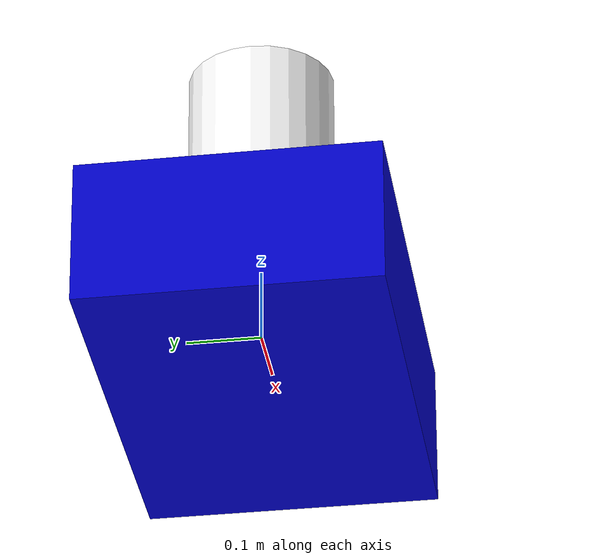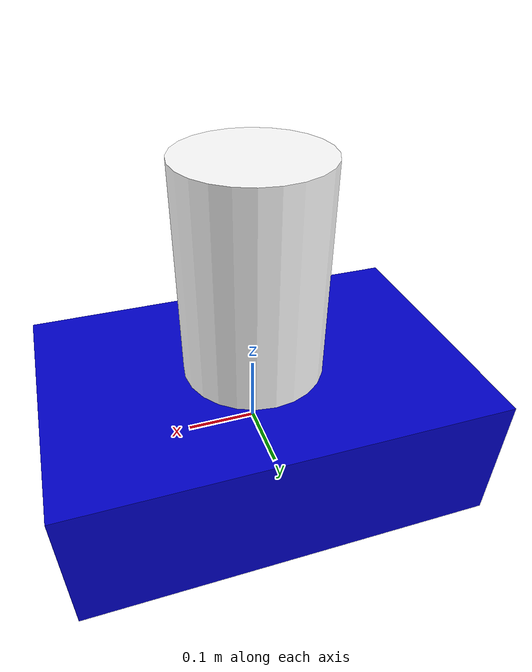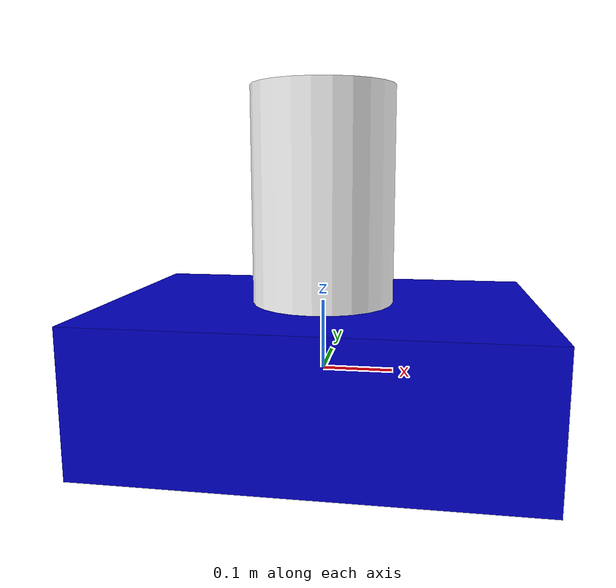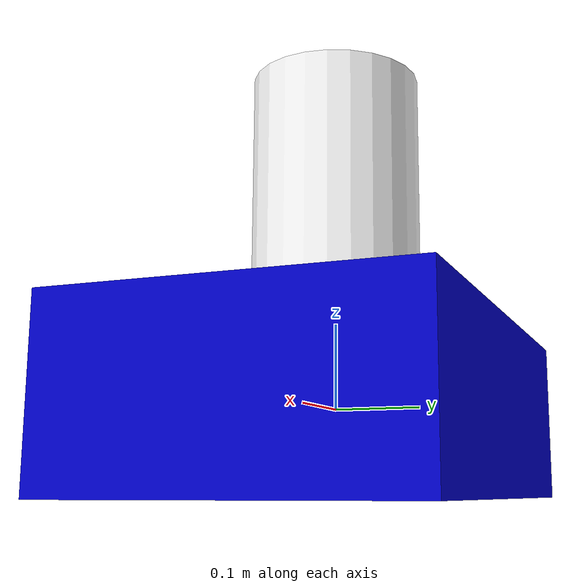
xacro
<?xml version="1.0"?>
<robot name="simple_example_robot">
<!-- Create a material -->
  <material name="blue">
    <color rgba="0 0 0.8 1"/>
  </material>

  <material name="white">
    <color rgba="1 1 1 1"/>
  </material>
<!-- Create an object -->
  <link name="base_link">
    <visual>
      <geometry>
        <box size="0.6 0.4 0.2"/>
      </geometry>
      <!-- Apply material -->
      <material name="blue"/>
    </visual>
  </link>

  <link name="head_link">
    <visual>
      <geometry>
        <cylinder length="0.3" radius="0.1"/>
      </geometry>
      <!-- Pos to be on the top of the box -->
      <origin xyz="0 0 0.15" rpy="0 0 0"/>
      <material name="white"/>
    </visual>
  </link>

<!-- Link both object -->
  <joint name="neck_joint" type="continuous">
    <parent link="base_link"/>
    <child link="head_link"/>

    <!-- Pos of the car, xyz than rotation -->
    <origin xyz="0 0 0.1" rpy="0 0 0"/>

    <axis xyz="0 0 1"/>
  </joint>

</robot>
